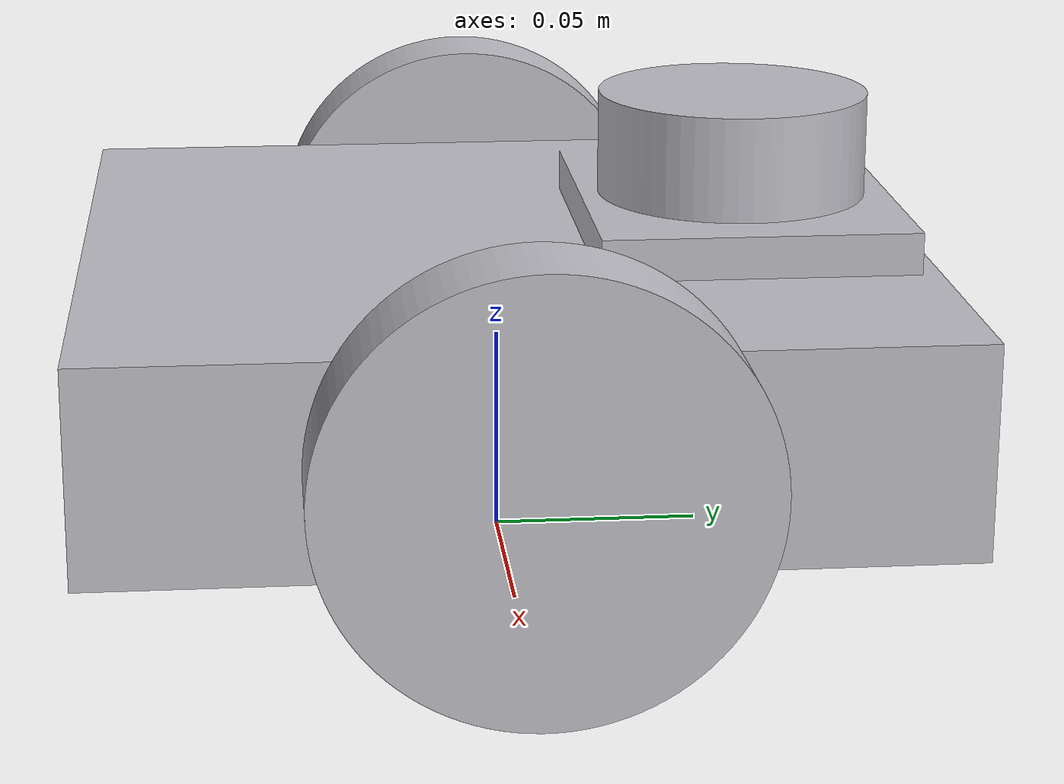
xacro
<?xml version="1.0" ?>
<robot name="mobile" xmlns:xacro="http://www.ros.org/wiki/xacro">

<xacro:include filename="$(find mobile_description)/urdf/materials.xacro" />
<xacro:include filename="$(find mobile_description)/urdf/mobile.trans" />
<xacro:include filename="$(find mobile_description)/urdf/mobile.gazebo" />
<link name="base_link">
  <inertial>
    <origin xyz="5.474970520392453e-15 -0.000301736895621843 0.01987626616510473" rpy="0 0 0"/>
    <mass value="9.467267879467137"/>
    <inertia ixx="0.032984" iyy="0.018991" izz="0.049394" ixy="0.0" iyz="-9.3e-05" ixz="0.0"/>
  </inertial>
  <visual>
    <origin xyz="0 0 0" rpy="0 0 0"/>
    <geometry>
      <mesh filename="file://$(find mobile_description)/meshes/base_link.stl" scale="0.001 0.001 0.001"/>
    </geometry>
    <material name="silver"/>
  </visual>
  <collision>
    <origin xyz="0 0 0" rpy="0 0 0"/>
    <geometry>
      <mesh filename="file://$(find mobile_description)/meshes/base_link.stl" scale="0.001 0.001 0.001"/>
    </geometry>
  </collision>
</link>

<link name="left_wheel_1">
  <inertial>
    <origin xyz="0.009999999999999995 0.0 -6.938893903907228e-18" rpy="0 0 0"/>
    <mass value="0.789168074581756"/>
    <inertia ixx="0.000631" iyy="0.000342" izz="0.000342" ixy="0.0" iyz="0.0" ixz="-0.0"/>
  </inertial>
  <visual>
    <origin xyz="-0.08 -0.07 -0.02" rpy="0 0 0"/>
    <geometry>
      <mesh filename="file://$(find mobile_description)/meshes/left_wheel_1.stl" scale="0.001 0.001 0.001"/>
    </geometry>
    <material name="silver"/>
  </visual>
  <collision>
    <origin xyz="-0.08 -0.07 -0.02" rpy="0 0 0"/>
    <geometry>
      <mesh filename="file://$(find mobile_description)/meshes/left_wheel_1.stl" scale="0.001 0.001 0.001"/>
    </geometry>
  </collision>
</link>

<link name="right_wheel_1">
  <inertial>
    <origin xyz="-0.009999999999999995 0.0 -6.938893903907228e-18" rpy="0 0 0"/>
    <mass value="0.789168074581756"/>
    <inertia ixx="0.000631" iyy="0.000342" izz="0.000342" ixy="0.0" iyz="0.0" ixz="0.0"/>
  </inertial>
  <visual>
    <origin xyz="0.08 -0.07 -0.02" rpy="0 0 0"/>
    <geometry>
      <mesh filename="file://$(find mobile_description)/meshes/right_wheel_1.stl" scale="0.001 0.001 0.001"/>
    </geometry>
    <material name="silver"/>
  </visual>
  <collision>
    <origin xyz="0.08 -0.07 -0.02" rpy="0 0 0"/>
    <geometry>
      <mesh filename="file://$(find mobile_description)/meshes/right_wheel_1.stl" scale="0.001 0.001 0.001"/>
    </geometry>
  </collision>
</link>

<joint name="Revolute 1" type="continuous">
  <origin xyz="0.08 0.07 0.02" rpy="0 0 0"/>
  <parent link="base_link"/>
  <child link="left_wheel_1"/>
  <axis xyz="1.0 0.0 0.0"/>
</joint>

<joint name="Revolute 2" type="continuous">
  <origin xyz="-0.08 0.07 0.02" rpy="0 0 0"/>
  <parent link="base_link"/>
  <child link="right_wheel_1"/>
  <axis xyz="-1.0 0.0 0.0"/>
</joint>

</robot>
